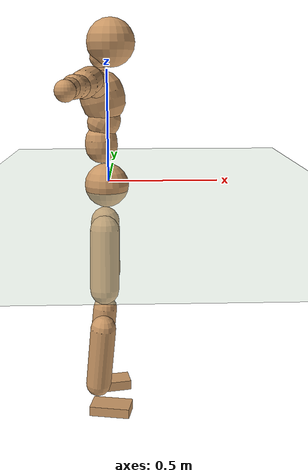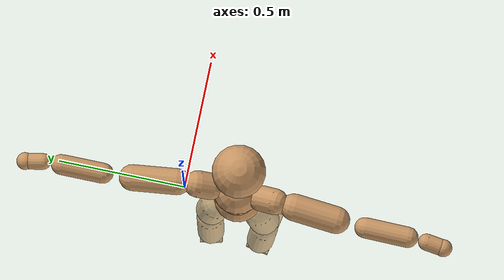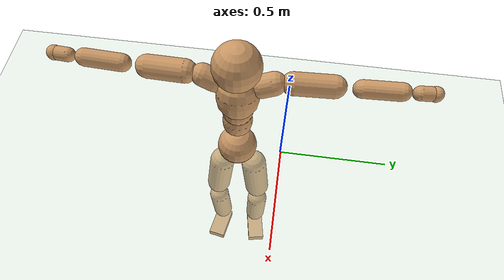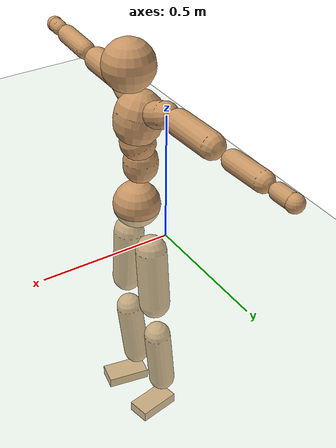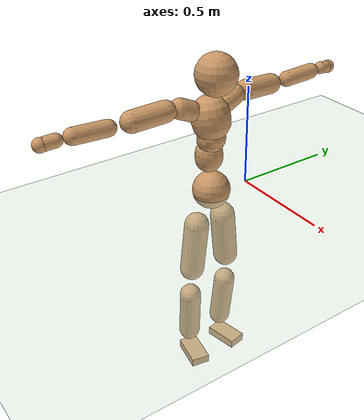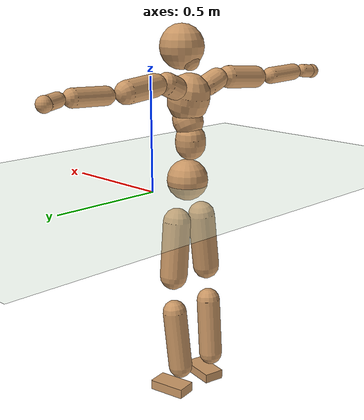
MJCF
<mujoco model="humanoid">
  <compiler coordinate="local" angle="radian"/>
  <default>
    <joint damping="0.0" armature="0.01" stiffness="0.0" limited="true"/>
    <geom conaffinity="1" condim="3" contype="7" margin="0.001" rgba="0.8 0.6 .4 1"/>
  </default>
  <asset>
    <texture type="skybox" builtin="gradient" rgb1=".4 .5 .6" rgb2="0 0 0" width="100" height="100"/>
    <texture builtin="flat" height="1278" mark="cross" markrgb="1 1 1" name="texgeom" random="0.01" rgb1="0.8 0.6 0.4" rgb2="0.8 0.6 0.4" type="cube" width="127"/>
    <texture builtin="checker" height="100" name="texplane" rgb1="0 0 0" rgb2="0.8 0.8 0.8" type="2d" width="100"/>
    <material name="MatPlane" reflectance="0.5" shininess="1" specular="1" texrepeat="60 60" texture="texplane"/>
    <material name="geom" texture="texgeom" texuniform="true"/>
  </asset>
  <worldbody>
    <light cutoff="100" diffuse="1 1 1" dir="-0 0 -1.3" directional="true" exponent="1" pos="0 0 1.3" specular=".1 .1 .1"/>
    <geom conaffinity="1" condim="3" name="floor" pos="0 0 0" rgba="0.8 0.9 0.8 1" size="100 100 .2" type="plane" material="MatPlane"/>
    <body name="Pelvis" pos="-0.001 -0.211 0.0214">
      <freejoint name="Pelvis"/>
      <geom type="sphere" contype="1" conaffinity="1" density="500" size="0.0938" pos="0.0000 0.0000 0.0000" name="Pelvis"/>
      <body name="L_Hip" pos="-0.0137 0.0734 -0.0945">
        <joint name="L_Hip_x" type="hinge" pos="0 0 0" axis="1 0 0" stiffness="800" damping="80" armature="0.02" range="-180.0000 180.0000"/>
        <joint name="L_Hip_y" type="hinge" pos="0 0 0" axis="0 1 0" stiffness="800" damping="80" armature="0.02" range="-180.0000 180.0000"/>
        <joint name="L_Hip_z" type="hinge" pos="0 0 0" axis="0 0 1" stiffness="800" damping="80" armature="0.02" range="-180.0000 180.0000"/>
        <geom type="capsule" contype="1" conaffinity="1" density="500" fromto="-0.0004 0.0081 -0.0846 -0.0015 0.0322 -0.3383" size="0.0628" name="L_Hip"/>
        <body name="L_Knee" pos="-0.0018 0.0403 -0.4229">
          <joint name="L_Knee_x" type="hinge" pos="0 0 0" axis="1 0 0" stiffness="800" damping="80" armature="0.02" range="-180.0000 180.0000"/>
          <joint name="L_Knee_y" type="hinge" pos="0 0 0" axis="0 1 0" stiffness="800" damping="80" armature="0.02" range="-180.0000 180.0000"/>
          <joint name="L_Knee_z" type="hinge" pos="0 0 0" axis="0 0 1" stiffness="800" damping="80" armature="0.02" range="-180.0000 180.0000"/>
          <geom type="capsule" contype="1" conaffinity="1" density="500" fromto="-0.0097 -0.0026 -0.0898 -0.0386 -0.0106 -0.3592" size="0.0549" name="L_Knee"/>
          <body name="L_Ankle" pos="-0.0483 -0.0132 -0.449">
            <joint name="L_Ankle_x" type="hinge" pos="0 0 0" axis="1 0 0" stiffness="800" damping="80" armature="0.02" range="-180.0000 180.0000"/>
            <joint name="L_Ankle_y" type="hinge" pos="0 0 0" axis="0 1 0" stiffness="800" damping="80" armature="0.02" range="-180.0000 180.0000"/>
            <joint name="L_Ankle_z" type="hinge" pos="0 0 0" axis="0 0 1" stiffness="800" damping="80" armature="0.02" range="-180.0000 180.0000"/>
            <geom type="box" contype="1" conaffinity="1" density="500" pos="0.0621 0.0119 -0.0311" size="0.0868 0.0464 0.0224" quat="0.9955 0.0000 0.0000 0.0947" name="L_Ankle"/>
            <body name="L_Toe" pos="0.1243 0.0238 -0.0623">
              <joint name="L_Toe_x" type="hinge" pos="0 0 0" axis="1 0 0" stiffness="500" damping="50" armature="0.02" range="-180.0000 180.0000"/>
              <joint name="L_Toe_y" type="hinge" pos="0 0 0" axis="0 1 0" stiffness="500" damping="50" armature="0.02" range="-180.0000 180.0000"/>
              <joint name="L_Toe_z" type="hinge" pos="0 0 0" axis="0 0 1" stiffness="500" damping="50" armature="0.02" range="-180.0000 180.0000"/>
              <geom type="box" contype="1" conaffinity="1" density="500" pos="0.0000 0.0000 0.0307" size="0.001 0.0023 0.0011" quat="0.9949 0.0000 0.0000 0.1008" name="L_Toe"/>
            </body>
          </body>
        </body>
      </body>
      <body name="R_Hip" pos="-0.0089 -0.0707 -0.0933">
        <joint name="R_Hip_x" type="hinge" pos="0 0 0" axis="1 0 0" stiffness="800" damping="80" armature="0.02" range="-180.0000 180.0000"/>
        <joint name="R_Hip_y" type="hinge" pos="0 0 0" axis="0 1 0" stiffness="800" damping="80" armature="0.02" range="-180.0000 180.0000"/>
        <joint name="R_Hip_z" type="hinge" pos="0 0 0" axis="0 0 1" stiffness="800" damping="80" armature="0.02" range="-180.0000 180.0000"/>
        <geom type="capsule" contype="1" conaffinity="1" density="500" fromto="-0.0010 -0.0096 -0.0862 -0.0042 -0.0382 -0.3447" size="0.0618" name="R_Hip"/>
        <body name="R_Knee" pos="-0.0052 -0.0478 -0.4308">
          <joint name="R_Knee_x" type="hinge" pos="0 0 0" axis="1 0 0" stiffness="800" damping="80" armature="0.02" range="-180.0000 180.0000"/>
          <joint name="R_Knee_y" type="hinge" pos="0 0 0" axis="0 1 0" stiffness="800" damping="80" armature="0.02" range="-180.0000 180.0000"/>
          <joint name="R_Knee_z" type="hinge" pos="0 0 0" axis="0 0 1" stiffness="800" damping="80" armature="0.02" range="-180.0000 180.0000"/>
          <geom type="capsule" contype="1" conaffinity="1" density="500" fromto="-0.0090 0.0034 -0.0897 -0.0361 0.0135 -0.3589" size="0.0552" name="R_Knee"/>
          <body name="R_Ankle" pos="-0.0451 0.0168 -0.4486">
            <joint name="R_Ankle_x" type="hinge" pos="0 0 0" axis="1 0 0" stiffness="800" damping="80" armature="0.02" range="-180.0000 180.0000"/>
            <joint name="R_Ankle_y" type="hinge" pos="0 0 0" axis="0 1 0" stiffness="800" damping="80" armature="0.02" range="-180.0000 180.0000"/>
            <joint name="R_Ankle_z" type="hinge" pos="0 0 0" axis="0 0 1" stiffness="800" damping="80" armature="0.02" range="-180.0000 180.0000"/>
            <geom type="box" contype="1" conaffinity="1" density="500" pos="0.0641 -0.0119 -0.0269" size="0.0891 0.0479 0.0218" quat="0.9958 0.0000 0.0000 -0.0918" name="R_Ankle"/>
            <body name="R_Toe" pos="0.1281 -0.0238 -0.0538">
              <joint name="R_Toe_x" type="hinge" pos="0 0 0" axis="1 0 0" stiffness="500" damping="50" armature="0.02" range="-180.0000 180.0000"/>
              <joint name="R_Toe_y" type="hinge" pos="0 0 0" axis="0 1 0" stiffness="500" damping="50" armature="0.02" range="-180.0000 180.0000"/>
              <joint name="R_Toe_z" type="hinge" pos="0 0 0" axis="0 0 1" stiffness="500" damping="50" armature="0.02" range="-180.0000 180.0000"/>
              <geom type="box" contype="1" conaffinity="1" density="500" pos="0.0000 0.0000 0.0294" size="0.0009 0.0023 0.0012" quat="0.9966 0.0000 0.0000 -0.0829" name="R_Toe"/>
            </body>
          </body>
        </body>
      </body>
      <body name="Torso" pos="-0.0189 -0.0031 0.1085">
        <joint name="Torso_x" type="hinge" pos="0 0 0" axis="1 0 0" stiffness="1000" damping="100" armature="0.02" range="-180.0000 180.0000"/>
        <joint name="Torso_y" type="hinge" pos="0 0 0" axis="0 1 0" stiffness="1000" damping="100" armature="0.02" range="-180.0000 180.0000"/>
        <joint name="Torso_z" type="hinge" pos="0 0 0" axis="0 0 1" stiffness="1000" damping="100" armature="0.02" range="-180.0000 180.0000"/>
        <geom type="capsule" contype="1" conaffinity="1" density="500" fromto="-0.0005 0.0026 0.0818 -0.0003 0.0017 0.0545" size="0.0677" name="Torso"/>
        <body name="Spine" pos="-0.0008 0.0044 0.1363">
          <joint name="Spine_x" type="hinge" pos="0 0 0" axis="1 0 0" stiffness="1000" damping="100" armature="0.02" range="-180.0000 180.0000"/>
          <joint name="Spine_y" type="hinge" pos="0 0 0" axis="0 1 0" stiffness="1000" damping="100" armature="0.02" range="-180.0000 180.0000"/>
          <joint name="Spine_z" type="hinge" pos="0 0 0" axis="0 0 1" stiffness="1000" damping="100" armature="0.02" range="-180.0000 180.0000"/>
          <geom type="capsule" contype="1" conaffinity="1" density="500" fromto="0.0160 0.0009 0.0308 0.0107 0.0006 0.0205" size="0.0681" name="Spine"/>
          <body name="Chest" pos="0.0267 0.0015 0.0513">
            <joint name="Chest_x" type="hinge" pos="0 0 0" axis="1 0 0" stiffness="1000" damping="100" armature="0.02" range="-180.0000 180.0000"/>
            <joint name="Chest_y" type="hinge" pos="0 0 0" axis="0 1 0" stiffness="1000" damping="100" armature="0.02" range="-180.0000 180.0000"/>
            <joint name="Chest_z" type="hinge" pos="0 0 0" axis="0 0 1" stiffness="1000" damping="100" armature="0.02" range="-180.0000 180.0000"/>
            <geom type="capsule" contype="1" conaffinity="1" density="500" fromto="-0.0218 -0.0012 0.0909 -0.0145 -0.0008 0.0606" size="0.0934" name="Chest"/>
            <body name="Neck" pos="-0.0377 -0.0041 0.2189">
              <joint name="Neck_x" type="hinge" pos="0 0 0" axis="1 0 0" stiffness="500" damping="50" armature="0.02" range="-180.0000 180.0000"/>
              <joint name="Neck_y" type="hinge" pos="0 0 0" axis="0 1 0" stiffness="500" damping="50" armature="0.02" range="-180.0000 180.0000"/>
              <joint name="Neck_z" type="hinge" pos="0 0 0" axis="0 0 1" stiffness="500" damping="50" armature="0.02" range="-180.0000 180.0000"/>
              <geom type="capsule" contype="1" conaffinity="1" density="500" fromto="0.0115 0.0011 0.0149 0.0462 0.0043 0.0595" size="0.0415" name="Neck"/>
              <body name="Head" pos="0.0577 0.0054 0.0743">
                <joint name="Head_x" type="hinge" pos="0 0 0" axis="1 0 0" stiffness="500" damping="50" armature="0.02" range="-180.0000 180.0000"/>
                <joint name="Head_y" type="hinge" pos="0 0 0" axis="0 1 0" stiffness="500" damping="50" armature="0.02" range="-180.0000 180.0000"/>
                <joint name="Head_z" type="hinge" pos="0 0 0" axis="0 0 1" stiffness="500" damping="50" armature="0.02" range="-180.0000 180.0000"/>
                <geom type="sphere" contype="1" conaffinity="1" density="500" size="0.0996" pos="0.0000 0.0000 0.0000" name="Head"/>
              </body>
            </body>
            <body name="L_Thorax" pos="-0.0332 0.0772 0.119">
              <joint name="L_Thorax_x" type="hinge" pos="0 0 0" axis="1 0 0" stiffness="500" damping="50" armature="0.02" range="-180.0000 180.0000"/>
              <joint name="L_Thorax_y" type="hinge" pos="0 0 0" axis="0 1 0" stiffness="500" damping="50" armature="0.02" range="-180.0000 180.0000"/>
              <joint name="L_Thorax_z" type="hinge" pos="0 0 0" axis="0 0 1" stiffness="500" damping="50" armature="0.02" range="-180.0000 180.0000"/>
              <geom type="capsule" contype="1" conaffinity="1" density="500" fromto="-0.0014 0.0173 0.0073 -0.0055 0.0694 0.0292" size="0.0506" name="L_Thorax"/>
              <body name="L_Shoulder" pos="-0.0069 0.0867 0.0366">
                <joint name="L_Shoulder_x" type="hinge" pos="0 0 0" axis="1 0 0" stiffness="500" damping="50" armature="0.02" range="-720.0000 720.0000"/>
                <joint name="L_Shoulder_y" type="hinge" pos="0 0 0" axis="0 1 0" stiffness="500" damping="50" armature="0.02" range="-720.0000 720.0000"/>
                <joint name="L_Shoulder_z" type="hinge" pos="0 0 0" axis="0 0 1" stiffness="500" damping="50" armature="0.02" range="-720.0000 720.0000"/>
                <geom type="capsule" contype="1" conaffinity="1" density="500" fromto="-0.0060 0.0566 -0.0042 -0.0238 0.2263 -0.0166" size="0.0494" name="L_Shoulder"/>
                <body name="L_Elbow" pos="-0.0298 0.2829 -0.0208">
                  <joint name="L_Elbow_x" type="hinge" pos="0 0 0" axis="1 0 0" stiffness="500" damping="50" armature="0.02" range="-720.0000 720.0000"/>
                  <joint name="L_Elbow_y" type="hinge" pos="0 0 0" axis="0 1 0" stiffness="500" damping="50" armature="0.02" range="-720.0000 720.0000"/>
                  <joint name="L_Elbow_z" type="hinge" pos="0 0 0" axis="0 0 1" stiffness="500" damping="50" armature="0.02" range="-720.0000 720.0000"/>
                  <geom type="capsule" contype="1" conaffinity="1" density="500" fromto="-0.0001 0.0530 0.0024 -0.0006 0.2121 0.0095" size="0.0386" name="L_Elbow"/>
                  <body name="L_Wrist" pos="-0.0007 0.2651 0.0119">
                    <joint name="L_Wrist_x" type="hinge" pos="0 0 0" axis="1 0 0" stiffness="300" damping="30" armature="0.02" range="-180.0000 180.0000"/>
                    <joint name="L_Wrist_y" type="hinge" pos="0 0 0" axis="0 1 0" stiffness="300" damping="30" armature="0.02" range="-180.0000 180.0000"/>
                    <joint name="L_Wrist_z" type="hinge" pos="0 0 0" axis="0 0 1" stiffness="300" damping="30" armature="0.02" range="-180.0000 180.0000"/>
                    <geom type="capsule" contype="1" conaffinity="1" density="500" fromto="-0.0028 0.0164 -0.0021 -0.0110 0.0657 -0.0083" size="0.0306" name="L_Wrist"/>
                    <body name="L_Hand" pos="-0.0138 0.0821 -0.0103">
                      <joint name="L_Hand_x" type="hinge" pos="0 0 0" axis="1 0 0" stiffness="300" damping="30" armature="0.02" range="-180.0000 180.0000"/>
                      <joint name="L_Hand_y" type="hinge" pos="0 0 0" axis="0 1 0" stiffness="300" damping="30" armature="0.02" range="-180.0000 180.0000"/>
                      <joint name="L_Hand_z" type="hinge" pos="0 0 0" axis="0 0 1" stiffness="300" damping="30" armature="0.02" range="-180.0000 180.0000"/>
                      <geom type="sphere" contype="1" conaffinity="1" density="500" size="0.0329" pos="0.0000 0.0000 0.0000" name="L_Hand"/>
                    </body>
                  </body>
                </body>
              </body>
            </body>
            <body name="R_Thorax" pos="-0.0382 -0.079 0.1169">
              <joint name="R_Thorax_x" type="hinge" pos="0 0 0" axis="1 0 0" stiffness="500" damping="50" armature="0.02" range="-180.0000 180.0000"/>
              <joint name="R_Thorax_y" type="hinge" pos="0 0 0" axis="0 1 0" stiffness="500" damping="50" armature="0.02" range="-180.0000 180.0000"/>
              <joint name="R_Thorax_z" type="hinge" pos="0 0 0" axis="0 0 1" stiffness="500" damping="50" armature="0.02" range="-180.0000 180.0000"/>
              <geom type="capsule" contype="1" conaffinity="1" density="500" fromto="-0.0017 -0.0179 0.0076 -0.0067 -0.0716 0.0306" size="0.049" name="R_Thorax"/>
              <body name="R_Shoulder" pos="-0.0083 -0.0895 0.0382">
                <joint name="R_Shoulder_x" type="hinge" pos="0 0 0" axis="1 0 0" stiffness="500" damping="50" armature="0.02" range="-720.0000 720.0000"/>
                <joint name="R_Shoulder_y" type="hinge" pos="0 0 0" axis="0 1 0" stiffness="500" damping="50" armature="0.02" range="-720.0000 720.0000"/>
                <joint name="R_Shoulder_z" type="hinge" pos="0 0 0" axis="0 0 1" stiffness="500" damping="50" armature="0.02" range="-720.0000 720.0000"/>
                <geom type="capsule" contype="1" conaffinity="1" density="500" fromto="-0.0045 -0.0548 -0.0040 -0.0182 -0.2192 -0.0159" size="0.051" name="R_Shoulder"/>
                <body name="R_Elbow" pos="-0.0227 -0.274 -0.0199">
                  <joint name="R_Elbow_x" type="hinge" pos="0 0 0" axis="1 0 0" stiffness="500" damping="50" armature="0.02" range="-720.0000 720.0000"/>
                  <joint name="R_Elbow_y" type="hinge" pos="0 0 0" axis="0 1 0" stiffness="500" damping="50" armature="0.02" range="-720.0000 720.0000"/>
                  <joint name="R_Elbow_z" type="hinge" pos="0 0 0" axis="0 0 1" stiffness="500" damping="50" armature="0.02" range="-720.0000 720.0000"/>
                  <geom type="capsule" contype="1" conaffinity="1" density="500" fromto="-0.0011 -0.0545 0.0018 -0.0045 -0.2182 0.0073" size="0.0389" name="R_Elbow"/>
                  <body name="R_Wrist" pos="-0.0056 -0.2727 0.0092">
                    <joint name="R_Wrist_x" type="hinge" pos="0 0 0" axis="1 0 0" stiffness="300" damping="30" armature="0.02" range="-180.0000 180.0000"/>
                    <joint name="R_Wrist_y" type="hinge" pos="0 0 0" axis="0 1 0" stiffness="300" damping="30" armature="0.02" range="-180.0000 180.0000"/>
                    <joint name="R_Wrist_z" type="hinge" pos="0 0 0" axis="0 0 1" stiffness="300" damping="30" armature="0.02" range="-180.0000 180.0000"/>
                    <geom type="capsule" contype="1" conaffinity="1" density="500" fromto="-0.0021 -0.0165 -0.0015 -0.0085 -0.0661 -0.0061" size="0.0312" name="R_Wrist"/>
                    <body name="R_Hand" pos="-0.0107 -0.0826 -0.0076">
                      <joint name="R_Hand_x" type="hinge" pos="0 0 0" axis="1 0 0" stiffness="300" damping="30" armature="0.02" range="-180.0000 180.0000"/>
                      <joint name="R_Hand_y" type="hinge" pos="0 0 0" axis="0 1 0" stiffness="300" damping="30" armature="0.02" range="-180.0000 180.0000"/>
                      <joint name="R_Hand_z" type="hinge" pos="0 0 0" axis="0 0 1" stiffness="300" damping="30" armature="0.02" range="-180.0000 180.0000"/>
                      <geom type="sphere" contype="1" conaffinity="1" density="500" size="0.0330" pos="0.0000 0.0000 0.0000" name="R_Hand"/>
                    </body>
                  </body>
                </body>
              </body>
            </body>
          </body>
        </body>
      </body>
    </body>
  </worldbody>
  <actuator>
    <motor name="L_Hip_x" joint="L_Hip_x" gear="500"/>
    <motor name="L_Hip_y" joint="L_Hip_y" gear="500"/>
    <motor name="L_Hip_z" joint="L_Hip_z" gear="500"/>
    <motor name="L_Knee_x" joint="L_Knee_x" gear="500"/>
    <motor name="L_Knee_y" joint="L_Knee_y" gear="500"/>
    <motor name="L_Knee_z" joint="L_Knee_z" gear="500"/>
    <motor name="L_Ankle_x" joint="L_Ankle_x" gear="500"/>
    <motor name="L_Ankle_y" joint="L_Ankle_y" gear="500"/>
    <motor name="L_Ankle_z" joint="L_Ankle_z" gear="500"/>
    <motor name="L_Toe_x" joint="L_Toe_x" gear="500"/>
    <motor name="L_Toe_y" joint="L_Toe_y" gear="500"/>
    <motor name="L_Toe_z" joint="L_Toe_z" gear="500"/>
    <motor name="R_Hip_x" joint="R_Hip_x" gear="500"/>
    <motor name="R_Hip_y" joint="R_Hip_y" gear="500"/>
    <motor name="R_Hip_z" joint="R_Hip_z" gear="500"/>
    <motor name="R_Knee_x" joint="R_Knee_x" gear="500"/>
    <motor name="R_Knee_y" joint="R_Knee_y" gear="500"/>
    <motor name="R_Knee_z" joint="R_Knee_z" gear="500"/>
    <motor name="R_Ankle_x" joint="R_Ankle_x" gear="500"/>
    <motor name="R_Ankle_y" joint="R_Ankle_y" gear="500"/>
    <motor name="R_Ankle_z" joint="R_Ankle_z" gear="500"/>
    <motor name="R_Toe_x" joint="R_Toe_x" gear="500"/>
    <motor name="R_Toe_y" joint="R_Toe_y" gear="500"/>
    <motor name="R_Toe_z" joint="R_Toe_z" gear="500"/>
    <motor name="Torso_x" joint="Torso_x" gear="500"/>
    <motor name="Torso_y" joint="Torso_y" gear="500"/>
    <motor name="Torso_z" joint="Torso_z" gear="500"/>
    <motor name="Spine_x" joint="Spine_x" gear="500"/>
    <motor name="Spine_y" joint="Spine_y" gear="500"/>
    <motor name="Spine_z" joint="Spine_z" gear="500"/>
    <motor name="Chest_x" joint="Chest_x" gear="500"/>
    <motor name="Chest_y" joint="Chest_y" gear="500"/>
    <motor name="Chest_z" joint="Chest_z" gear="500"/>
    <motor name="Neck_x" joint="Neck_x" gear="500"/>
    <motor name="Neck_y" joint="Neck_y" gear="500"/>
    <motor name="Neck_z" joint="Neck_z" gear="500"/>
    <motor name="Head_x" joint="Head_x" gear="500"/>
    <motor name="Head_y" joint="Head_y" gear="500"/>
    <motor name="Head_z" joint="Head_z" gear="500"/>
    <motor name="L_Thorax_x" joint="L_Thorax_x" gear="500"/>
    <motor name="L_Thorax_y" joint="L_Thorax_y" gear="500"/>
    <motor name="L_Thorax_z" joint="L_Thorax_z" gear="500"/>
    <motor name="L_Shoulder_x" joint="L_Shoulder_x" gear="500"/>
    <motor name="L_Shoulder_y" joint="L_Shoulder_y" gear="500"/>
    <motor name="L_Shoulder_z" joint="L_Shoulder_z" gear="500"/>
    <motor name="L_Elbow_x" joint="L_Elbow_x" gear="500"/>
    <motor name="L_Elbow_y" joint="L_Elbow_y" gear="500"/>
    <motor name="L_Elbow_z" joint="L_Elbow_z" gear="500"/>
    <motor name="L_Wrist_x" joint="L_Wrist_x" gear="500"/>
    <motor name="L_Wrist_y" joint="L_Wrist_y" gear="500"/>
    <motor name="L_Wrist_z" joint="L_Wrist_z" gear="500"/>
    <motor name="L_Hand_x" joint="L_Hand_x" gear="500"/>
    <motor name="L_Hand_y" joint="L_Hand_y" gear="500"/>
    <motor name="L_Hand_z" joint="L_Hand_z" gear="500"/>
    <motor name="R_Thorax_x" joint="R_Thorax_x" gear="500"/>
    <motor name="R_Thorax_y" joint="R_Thorax_y" gear="500"/>
    <motor name="R_Thorax_z" joint="R_Thorax_z" gear="500"/>
    <motor name="R_Shoulder_x" joint="R_Shoulder_x" gear="500"/>
    <motor name="R_Shoulder_y" joint="R_Shoulder_y" gear="500"/>
    <motor name="R_Shoulder_z" joint="R_Shoulder_z" gear="500"/>
    <motor name="R_Elbow_x" joint="R_Elbow_x" gear="500"/>
    <motor name="R_Elbow_y" joint="R_Elbow_y" gear="500"/>
    <motor name="R_Elbow_z" joint="R_Elbow_z" gear="500"/>
    <motor name="R_Wrist_x" joint="R_Wrist_x" gear="500"/>
    <motor name="R_Wrist_y" joint="R_Wrist_y" gear="500"/>
    <motor name="R_Wrist_z" joint="R_Wrist_z" gear="500"/>
    <motor name="R_Hand_x" joint="R_Hand_x" gear="500"/>
    <motor name="R_Hand_y" joint="R_Hand_y" gear="500"/>
    <motor name="R_Hand_z" joint="R_Hand_z" gear="500"/>
  </actuator>
  <contact>
    <exclude body1="Torso" body2="Chest"/>
    <exclude body1="Head" body2="Chest"/>
    <exclude body1="R_Knee" body2="R_Toe"/>
    <exclude body1="R_Knee" body2="L_Ankle"/>
    <exclude body1="R_Knee" body2="L_Toe"/>
    <exclude body1="L_Knee" body2="L_Toe"/>
    <exclude body1="L_Knee" body2="R_Ankle"/>
    <exclude body1="L_Knee" body2="R_Toe"/>
    <exclude body1="L_Shoulder" body2="Chest"/>
    <exclude body1="R_Shoulder" body2="Chest"/>
  </contact>
  <sensor/>
  <size njmax="700" nconmax="700"/>
</mujoco>
